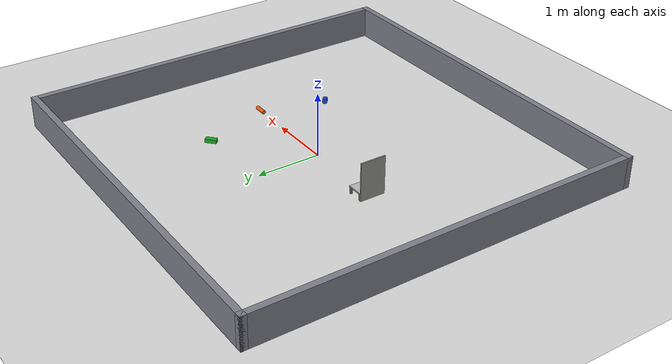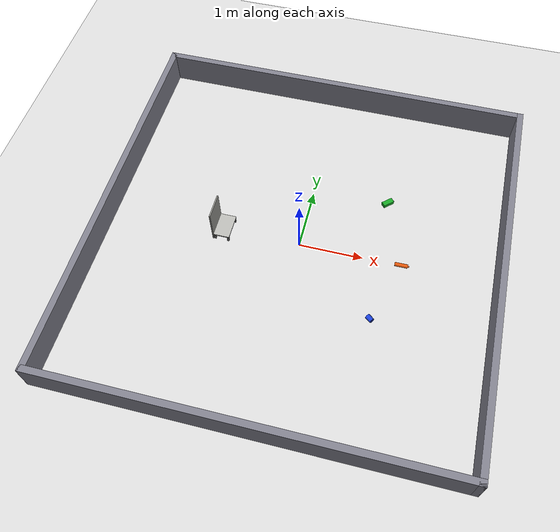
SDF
<?xml version="1.0"?>
<sdf version="1.9">
  <world name="bimanual_main">

    <physics name="step" type="ignored">
      <max_step_size>0.001</max_step_size>
      <real_time_factor>1.0</real_time_factor>
    </physics>
    <plugin filename="gz-sim-physics-system" name="gz::sim::systems::Physics"/>
    <plugin filename="gz-sim-user-commands-system" name="gz::sim::systems::UserCommands"/>
    <plugin filename="gz-sim-scene-broadcaster-system" name="gz::sim::systems::SceneBroadcaster"/>
    <plugin filename="gz-sim-sensors-system" name="gz::sim::systems::Sensors">
      <render_engine>ogre2</render_engine>
    </plugin>

    <light type="directional" name="sun">
      <cast_shadows>true</cast_shadows>
      <pose>0 0 10 0 0 0</pose>
      <diffuse>0.9 0.9 0.9 1</diffuse>
      <specular>0.2 0.2 0.2 1</specular>
      <direction>-0.4 0.2 -0.9</direction>
    </light>

    <model name="ground_plane">
      <static>true</static>
      <link name="link">
        <collision name="col">
          <geometry><plane><normal>0 0 1</normal><size>20 20</size></plane></geometry>
          <surface><friction><ode><mu>1.0</mu><mu2>1.0</mu2></ode></friction></surface>
        </collision>
        <visual name="vis">
          <geometry><plane><normal>0 0 1</normal><size>20 20</size></plane></geometry>
          <material><ambient>0.85 0.85 0.85 1</ambient><diffuse>0.85 0.85 0.85 1</diffuse></material>
        </visual>
      </link>
    </model>

    <!-- 6 x 6 m room -->
    <model name="wall_xp"><static>true</static><pose>3.05 0 0.25 0 0 0</pose>
      <link name="link">
        <collision name="col"><geometry><box><size>0.1 6.2 0.5</size></box></geometry></collision>
        <visual name="vis"><geometry><box><size>0.1 6.2 0.5</size></box></geometry>
          <material><ambient>0.5 0.5 0.55 1</ambient><diffuse>0.5 0.5 0.55 1</diffuse></material></visual>
      </link>
    </model>
    <model name="wall_xn"><static>true</static><pose>-3.05 0 0.25 0 0 0</pose>
      <link name="link">
        <collision name="col"><geometry><box><size>0.1 6.2 0.5</size></box></geometry></collision>
        <visual name="vis"><geometry><box><size>0.1 6.2 0.5</size></box></geometry>
          <material><ambient>0.5 0.5 0.55 1</ambient><diffuse>0.5 0.5 0.55 1</diffuse></material></visual>
      </link>
    </model>
    <model name="wall_yp"><static>true</static><pose>0 3.05 0.25 0 0 0</pose>
      <link name="link">
        <collision name="col"><geometry><box><size>6.2 0.1 0.5</size></box></geometry></collision>
        <visual name="vis"><geometry><box><size>6.2 0.1 0.5</size></box></geometry>
          <material><ambient>0.5 0.5 0.55 1</ambient><diffuse>0.5 0.5 0.55 1</diffuse></material></visual>
      </link>
    </model>
    <model name="wall_yn"><static>true</static><pose>0 -3.05 0.25 0 0 0</pose>
      <link name="link">
        <collision name="col"><geometry><box><size>6.2 0.1 0.5</size></box></geometry></collision>
        <visual name="vis"><geometry><box><size>6.2 0.1 0.5</size></box></geometry>
          <material><ambient>0.5 0.5 0.55 1</ambient><diffuse>0.5 0.5 0.55 1</diffuse></material></visual>
      </link>
    </model>

    <!-- shelf behind the robot spawn point, front face toward +x -->
    <include>
      <uri>model://shelf</uri>
      <name>shelf</name>
      <pose>-1.2 0 0 0 0 0</pose>
    </include>

    <!-- fallen objects: each lying with its long axis pointing back at the
         robot spawn area (robot spawns at origin, facing +x) -->
    <include>
      <uri>model://bottle</uri>
      <name>bottle</name>
      <pose>1.6 0 0.031 0 1.5708 0</pose>
    </include>
    <include>
      <uri>model://bowl</uri>
      <name>bowl</name>
      <pose>1.3 -1.0 0.041 0 1.5708 -0.6557</pose>
    </include>
    <include>
      <uri>model://cracker_box</uri>
      <name>cracker_box</name>
      <pose>1.2 1.1 0.031 0 1.5708 0.7419</pose>
    </include>

  </world>
</sdf>

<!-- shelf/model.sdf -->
<sdf version="1.9">
  <model name="shelf">
    <static>true</static>
    <link name="link">
      <!-- top slab: 0.25 (x, depth) x 0.40 (y, width), top surface at z=0.12 -->
      <collision name="slab_col">
        <pose>0 0 0.11 0 0 0</pose>
        <geometry><box><size>0.25 0.40 0.02</size></box></geometry>
        <surface>
          <friction><ode><mu>1.0</mu><mu2>1.0</mu2></ode></friction>
        </surface>
      </collision>
      <visual name="slab_vis">
        <pose>0 0 0.11 0 0 0</pose>
        <geometry><box><size>0.25 0.40 0.02</size></box></geometry>
        <material><ambient>0.72 0.72 0.70 1</ambient><diffuse>0.72 0.72 0.70 1</diffuse></material>
      </visual>

      <!-- legs -->
      <collision name="leg1_col"><pose>0.105 0.18 0.05 0 0 0</pose><geometry><box><size>0.03 0.03 0.10</size></box></geometry></collision>
      <visual name="leg1_vis"><pose>0.105 0.18 0.05 0 0 0</pose><geometry><box><size>0.03 0.03 0.10</size></box></geometry><material><ambient>0.45 0.45 0.44 1</ambient><diffuse>0.45 0.45 0.44 1</diffuse></material></visual>
      <collision name="leg2_col"><pose>0.105 -0.18 0.05 0 0 0</pose><geometry><box><size>0.03 0.03 0.10</size></box></geometry></collision>
      <visual name="leg2_vis"><pose>0.105 -0.18 0.05 0 0 0</pose><geometry><box><size>0.03 0.03 0.10</size></box></geometry><material><ambient>0.45 0.45 0.44 1</ambient><diffuse>0.45 0.45 0.44 1</diffuse></material></visual>
      <collision name="leg3_col"><pose>-0.105 0.18 0.05 0 0 0</pose><geometry><box><size>0.03 0.03 0.10</size></box></geometry></collision>
      <visual name="leg3_vis"><pose>-0.105 0.18 0.05 0 0 0</pose><geometry><box><size>0.03 0.03 0.10</size></box></geometry><material><ambient>0.45 0.45 0.44 1</ambient><diffuse>0.45 0.45 0.44 1</diffuse></material></visual>
      <collision name="leg4_col"><pose>-0.105 -0.18 0.05 0 0 0</pose><geometry><box><size>0.03 0.03 0.10</size></box></geometry></collision>
      <visual name="leg4_vis"><pose>-0.105 -0.18 0.05 0 0 0</pose><geometry><box><size>0.03 0.03 0.10</size></box></geometry><material><ambient>0.45 0.45 0.44 1</ambient><diffuse>0.45 0.45 0.44 1</diffuse></material></visual>

      <!-- tall back board (rear = -x side): LiDAR landmark -->
      <collision name="back_col">
        <pose>-0.135 0 0.30 0 0 0</pose>
        <geometry><box><size>0.02 0.40 0.60</size></box></geometry>
      </collision>
      <visual name="back_vis">
        <pose>-0.135 0 0.30 0 0 0</pose>
        <geometry><box><size>0.02 0.40 0.60</size></box></geometry>
        <material><ambient>0.58 0.58 0.56 1</ambient><diffuse>0.58 0.58 0.56 1</diffuse></material>
      </visual>
    </link>
  </model>
</sdf>

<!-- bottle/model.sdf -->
<sdf version="1.9">
  <model name="bottle">
    <link name="link">
      <inertial>
        <mass>0.15</mass>
        <inertia>
          <ixx>5.34e-4</ixx><iyy>5.34e-4</iyy><izz>6.75e-5</izz>
          <ixy>0</ixy><ixz>0</ixz><iyz>0</iyz>
        </inertia>
      </inertial>
      <collision name="col">
        <geometry><cylinder><radius>0.03</radius><length>0.20</length></cylinder></geometry>
        <surface>
          <friction><ode><mu>1.2</mu><mu2>1.2</mu2></ode></friction>
        </surface>
      </collision>
      <visual name="body">
        <geometry><cylinder><radius>0.03</radius><length>0.20</length></cylinder></geometry>
        <material>
          <ambient>0.9 0.35 0.05 1</ambient>
          <diffuse>0.9 0.35 0.05 1</diffuse>
          <specular>0.3 0.3 0.3 1</specular>
        </material>
      </visual>
      <visual name="cap">
        <pose>0 0 0.11 0 0 0</pose>
        <geometry><cylinder><radius>0.012</radius><length>0.02</length></cylinder></geometry>
        <material>
          <ambient>0.9 0.35 0.05 1</ambient>
          <diffuse>0.9 0.35 0.05 1</diffuse>
        </material>
      </visual>
    </link>
  </model>
</sdf>

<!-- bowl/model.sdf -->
<sdf version="1.9">
  <model name="bowl">
    <link name="link">
      <inertial>
        <mass>0.20</mass>
        <inertia>
          <ixx>2.47e-4</ixx><iyy>2.47e-4</iyy><izz>1.6e-4</izz>
          <ixy>0</ixy><ixz>0</ixz><iyz>0</iyz>
        </inertia>
      </inertial>
      <collision name="col">
        <geometry><cylinder><radius>0.04</radius><length>0.10</length></cylinder></geometry>
        <surface>
          <friction><ode><mu>1.2</mu><mu2>1.2</mu2></ode></friction>
        </surface>
      </collision>
      <visual name="body">
        <geometry><cylinder><radius>0.04</radius><length>0.10</length></cylinder></geometry>
        <material>
          <ambient>0.1 0.25 0.85 1</ambient>
          <diffuse>0.1 0.25 0.85 1</diffuse>
          <specular>0.3 0.3 0.3 1</specular>
        </material>
      </visual>
      <visual name="rim">
        <pose>0 0 0.051 0 0 0</pose>
        <geometry><cylinder><radius>0.036</radius><length>0.004</length></cylinder></geometry>
        <material>
          <ambient>0.05 0.12 0.5 1</ambient>
          <diffuse>0.05 0.12 0.5 1</diffuse>
        </material>
      </visual>
    </link>
  </model>
</sdf>

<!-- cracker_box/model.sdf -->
<sdf version="1.9">
  <model name="cracker_box">
    <link name="link">
      <inertial>
        <mass>0.25</mass>
        <inertia>
          <ixx>8.08e-4</ixx><iyy>7.50e-4</iyy><izz>2.08e-4</izz>
          <ixy>0</ixy><ixz>0</ixz><iyz>0</iyz>
        </inertia>
      </inertial>
      <collision name="col">
        <geometry><box><size>0.06 0.08 0.18</size></box></geometry>
        <surface>
          <friction><ode><mu>1.2</mu><mu2>1.2</mu2></ode></friction>
        </surface>
      </collision>
      <visual name="body">
        <geometry><box><size>0.06 0.08 0.18</size></box></geometry>
        <material>
          <ambient>0.1 0.65 0.15 1</ambient>
          <diffuse>0.1 0.65 0.15 1</diffuse>
          <specular>0.2 0.2 0.2 1</specular>
        </material>
      </visual>
    </link>
  </model>
</sdf>
